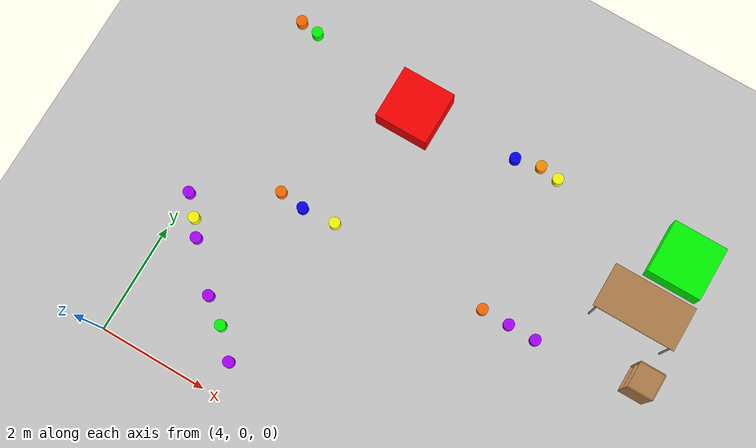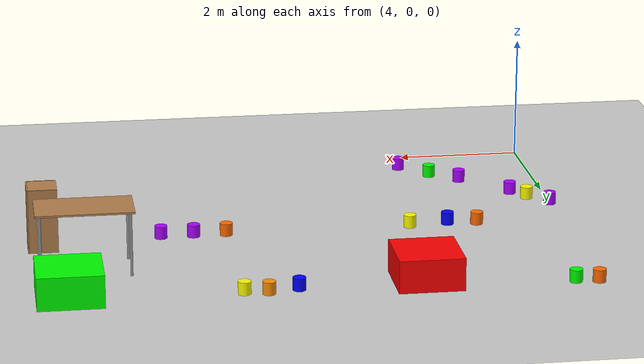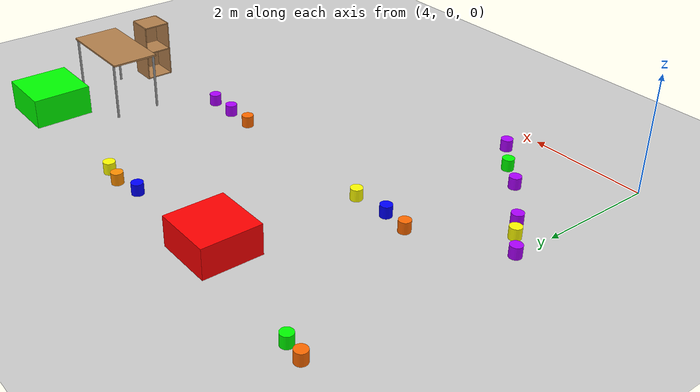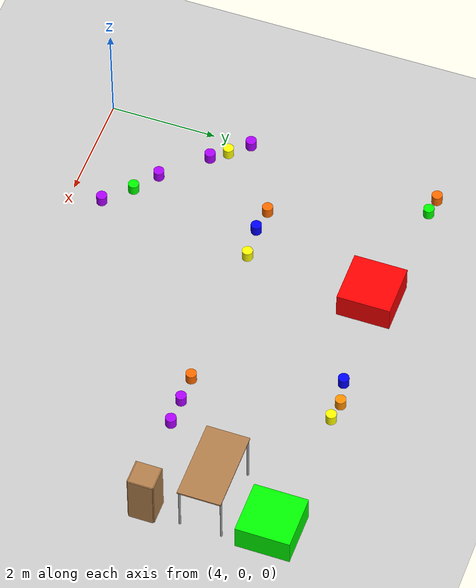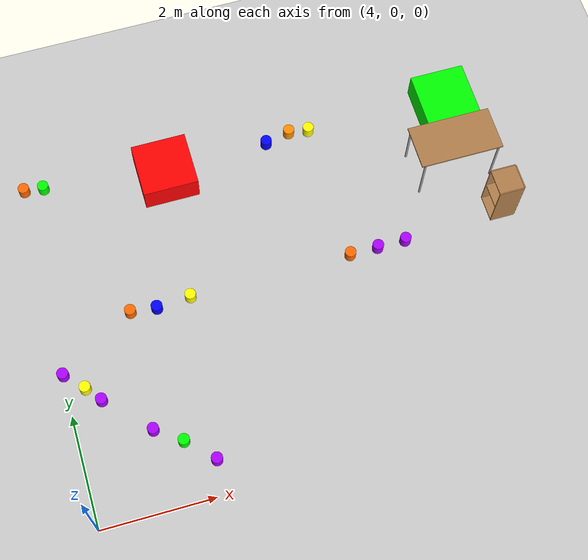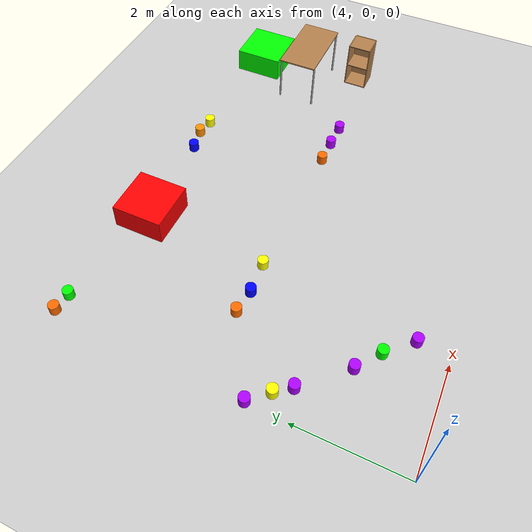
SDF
<sdf version="1.6">
 <world name="default">
  <model name="ground_plane">
   <static>1</static>
   <link name="link">
    <collision name="collision">
     <geometry><plane><normal>0 0 1</normal><size>100 100</size></plane></geometry>
     <surface>
      <contact><collide_bitmask>65535</collide_bitmask></contact>
      <friction><ode><mu>100</mu><mu2>50</mu2></ode></friction>
     </surface>
    </collision>
    <visual name="visual">
     <cast_shadows>0</cast_shadows>
     <geometry><plane><normal>0 0 1</normal><size>100 100</size></plane></geometry>
     <material>
      <script><uri>file://media/materials/scripts/gazebo.material</uri><name>Gazebo/Grey</name></script>
     </material>
    </visual>
   </link>
  </model>
  <model name="green_box_0">
   <link name="link_0">
    <inertial>
     <mass>1</mass>
     <inertia>
      <ixx>0.166667</ixx>
      <ixy>0</ixy>
      <ixz>0</ixz>
      <iyy>0.166667</iyy>
      <iyz>0</iyz>
      <izz>0.166667</izz>
     </inertia>
    </inertial>
    <visual name="visual">
     <geometry><box><size>1 0.999998 1</size></box></geometry>
     <material>
      <lighting>1</lighting>
      <script><uri>file://media/materials/scripts/gazebo.material</uri><name>Gazebo/Grey</name></script>
      <shader type="vertex"><normal_map>__default__</normal_map></shader>
      <ambient>0 1 0 1</ambient>
      <diffuse>0 1 0 1</diffuse>
      <specular>0 1 0 1</specular>
      <emissive>0 0 0 1</emissive>
     </material>
    </visual>
    <collision name="collision">
     <geometry><box><size>1 0.999998 1</size></box></geometry>
     <surface>
      <friction>
       <ode><mu>1</mu><mu2>1</mu2><fdir1>0 0 0</fdir1><slip1>0</slip1><slip2>0</slip2></ode>
       <torsional>
        <coefficient>1</coefficient>
        <patch_radius>0</patch_radius>
        <surface_radius>0</surface_radius>
        <use_patch_radius>1</use_patch_radius>
        <ode><slip>0</slip></ode>
       </torsional>
      </friction>
      <bounce><restitution_coefficient>0</restitution_coefficient><threshold>1e+06</threshold></bounce>
      <contact>
       <collide_without_contact>0</collide_without_contact>
       <collide_without_contact_bitmask>1</collide_without_contact_bitmask>
       <collide_bitmask>1</collide_bitmask>
       <ode>
        <soft_cfm>0</soft_cfm>
        <soft_erp>0.2</soft_erp>
        <kp>1e+13</kp>
        <kd>1</kd>
        <max_vel>0.01</max_vel>
        <min_depth>0</min_depth>
       </ode>
       <bullet>
        <split_impulse>1</split_impulse>
        <split_impulse_penetration_threshold>-0.01</split_impulse_penetration_threshold>
        <soft_cfm>0</soft_cfm>
        <soft_erp>0.2</soft_erp>
        <kp>1e+13</kp>
        <kd>1</kd>
       </bullet>
      </contact>
     </surface>
    </collision>
   </link>
   <static>1</static>
   <pose>11.9737 5.95039 0 0 -0 0</pose>
  </model>
  <model name="red_box_0">
   <link name="link_0">
    <inertial>
     <mass>1</mass>
     <inertia>
      <ixx>0.166667</ixx>
      <ixy>0</ixy>
      <ixz>0</ixz>
      <iyy>0.166667</iyy>
      <iyz>0</iyz>
      <izz>0.166667</izz>
     </inertia>
    </inertial>
    <visual name="visual">
     <geometry><box><size>1 1 1</size></box></geometry>
     <material>
      <lighting>1</lighting>
      <script><uri>file://media/materials/scripts/gazebo.material</uri><name>Gazebo/Grey</name></script>
      <shader type="vertex"><normal_map>__default__</normal_map></shader>
      <ambient>1 0 0 1</ambient>
      <diffuse>1 0 0 1</diffuse>
      <specular>1 0 0 1</specular>
      <emissive>0 0 0 1</emissive>
     </material>
    </visual>
    <collision name="collision">
     <geometry><box><size>1 1 1</size></box></geometry>
     <surface>
      <friction>
       <ode><mu>1</mu><mu2>1</mu2><fdir1>0 0 0</fdir1><slip1>0</slip1><slip2>0</slip2></ode>
       <torsional>
        <coefficient>1</coefficient>
        <patch_radius>0</patch_radius>
        <surface_radius>0</surface_radius>
        <use_patch_radius>1</use_patch_radius>
        <ode><slip>0</slip></ode>
       </torsional>
      </friction>
      <bounce><restitution_coefficient>0</restitution_coefficient><threshold>1e+06</threshold></bounce>
      <contact>
       <collide_without_contact>0</collide_without_contact>
       <collide_without_contact_bitmask>1</collide_without_contact_bitmask>
       <collide_bitmask>1</collide_bitmask>
       <ode>
        <soft_cfm>0</soft_cfm>
        <soft_erp>0.2</soft_erp>
        <kp>1e+13</kp>
        <kd>1</kd>
        <max_vel>0.01</max_vel>
        <min_depth>0</min_depth>
       </ode>
       <bullet>
        <split_impulse>1</split_impulse>
        <split_impulse_penetration_threshold>-0.01</split_impulse_penetration_threshold>
        <soft_cfm>0</soft_cfm>
        <soft_erp>0.2</soft_erp>
        <kp>1e+13</kp>
        <kd>1</kd>
       </bullet>
      </contact>
     </surface>
    </collision>
   </link>
   <static>1</static>
   <pose>6.64755 5.96572 0 0 -0 0</pose>
  </model>
  <model name="cabinet_0">
   <static>1</static>
   <link name="cabinet_bottom_plate">
    <inertial>
     <pose>0 0 -1 0 -0 0</pose>
     <inertia><ixx>2.05</ixx><ixy>0</ixy><ixz>0</ixz><iyy>2.05</iyy><iyz>0</iyz><izz>2.05</izz></inertia>
     <mass>25</mass>
    </inertial>
    <collision name="cabinet_bottom_plate_geom">
     <pose>0 0 0.01 0 -0 0</pose>
     <geometry><box><size>0.45 0.45 0.02</size></box></geometry>
    </collision>
    <visual name="cabinet_bottom_plate_geom_visual">
     <pose>0 0 0.01 0 -0 0</pose>
     <geometry><box><size>0.45 0.45 0.02</size></box></geometry>
     <material>
      <script><uri>file://media/materials/scripts/gazebo.material</uri><name>Gazebo/Wood</name></script>
     </material>
    </visual>
    <collision name="cabinet_bottom_plate_geom_cabinet_back_plate">
     <pose>0.235 0 0.51 0 -0 0</pose>
     <geometry><box><size>0.02 0.45 1.02</size></box></geometry>
    </collision>
    <visual name="cabinet_bottom_plate_geom_cabinet_back_plate_visual">
     <pose>0.235 0 0.51 0 -0 0</pose>
     <geometry><box><size>0.02 0.45 1.02</size></box></geometry>
     <material>
      <script><uri>file://media/materials/scripts/gazebo.material</uri><name>Gazebo/Wood</name></script>
     </material>
    </visual>
    <collision name="cabinet_bottom_plate_geom_cabinet_left_plate">
     <pose>0 0.235 0.51 0 -0 0</pose>
     <geometry><box><size>0.45 0.02 1.02</size></box></geometry>
    </collision>
    <visual name="cabinet_bottom_plate_geom_cabinet_left_plate_visual">
     <pose>0 0.235 0.51 0 -0 0</pose>
     <geometry><box><size>0.45 0.02 1.02</size></box></geometry>
     <material>
      <script><uri>file://media/materials/scripts/gazebo.material</uri><name>Gazebo/Wood</name></script>
     </material>
    </visual>
    <collision name="cabinet_bottom_plate_geom_cabinet_middle_plate">
     <pose>0 0 0.51 0 -0 0</pose>
     <geometry><box><size>0.45 0.45 0.02</size></box></geometry>
    </collision>
    <visual name="cabinet_bottom_plate_geom_cabinet_middle_plate_visual">
     <pose>0 0 0.51 0 -0 0</pose>
     <geometry><box><size>0.45 0.45 0.02</size></box></geometry>
     <material>
      <script><uri>file://media/materials/scripts/gazebo.material</uri><name>Gazebo/Wood</name></script>
     </material>
    </visual>
    <collision name="cabinet_bottom_plate_geom_cabinet_right_plate">
     <pose>0 -0.235 0.51 0 -0 0</pose>
     <geometry><box><size>0.45 0.02 1.02</size></box></geometry>
    </collision>
    <visual name="cabinet_bottom_plate_geom_cabinet_right_plate_visual">
     <pose>0 -0.235 0.51 0 -0 0</pose>
     <geometry><box><size>0.45 0.02 1.02</size></box></geometry>
     <material>
      <script><uri>file://media/materials/scripts/gazebo.material</uri><name>Gazebo/Wood</name></script>
     </material>
    </visual>
    <collision name="cabinet_bottom_plate_geom_cabinet_top_plate">
     <pose>0 0 1.01 0 -0 0</pose>
     <geometry><box><size>0.45 0.45 0.02</size></box></geometry>
    </collision>
    <visual name="cabinet_bottom_plate_geom_cabinet_top_plate_visual">
     <pose>0 0 1.01 0 -0 0</pose>
     <geometry><box><size>0.45 0.45 0.02</size></box></geometry>
     <material>
      <script><uri>file://media/materials/scripts/gazebo.material</uri><name>Gazebo/Wood</name></script>
     </material>
    </visual>
   </link>
   <pose>12.2698 3.74107 0 0 -0 0</pose>
  </model>
  <model name="cylinder_v_0">
   <link name="link_0">
    <pose>0 0 0.1 0 -0 0</pose>
    <inertial>
     <mass>1</mass>
     <inertia><ixx>0.145833</ixx><ixy>0</ixy><ixz>0</ixz><iyy>0.145833</iyy><iyz>0</iyz><izz>0.125</izz></inertia>
    </inertial>
    <visual name="visual">
     <geometry><cylinder><radius>0.1</radius><length>0.2</length></cylinder></geometry>
     <material>
      <lighting>1</lighting>
      <script><uri>file://media/materials/scripts/gazebo.material</uri><name>Gazebo/Grey</name></script>
      <ambient>0.682 0 1 1</ambient>
      <diffuse>0.682 0 1 1</diffuse>
      <specular>0 0 0 1</specular>
      <emissive>0 0 0 1</emissive>
      <shader type="vertex"><normal_map>__default__</normal_map></shader>
     </material>
    </visual>
    <collision name="collision">
     <geometry><cylinder><radius>0.1</radius><length>0.2</length></cylinder></geometry>
     <surface>
      <friction>
       <ode><mu>1</mu><mu2>1</mu2><fdir1>0 0 0</fdir1><slip1>0</slip1><slip2>0</slip2></ode>
       <torsional>
        <coefficient>1</coefficient>
        <patch_radius>0</patch_radius>
        <surface_radius>0</surface_radius>
        <use_patch_radius>1</use_patch_radius>
        <ode><slip>0</slip></ode>
       </torsional>
      </friction>
      <bounce><restitution_coefficient>0</restitution_coefficient><threshold>1e+06</threshold></bounce>
      <contact>
       <collide_without_contact>0</collide_without_contact>
       <collide_without_contact_bitmask>1</collide_without_contact_bitmask>
       <collide_bitmask>1</collide_bitmask>
       <ode>
        <soft_cfm>0</soft_cfm>
        <soft_erp>0.2</soft_erp>
        <kp>1e+13</kp>
        <kd>1</kd>
        <max_vel>0.01</max_vel>
        <min_depth>0</min_depth>
       </ode>
       <bullet>
        <split_impulse>1</split_impulse>
        <split_impulse_penetration_threshold>-0.01</split_impulse_penetration_threshold>
        <soft_cfm>0</soft_cfm>
        <soft_erp>0.2</soft_erp>
        <kp>1e+13</kp>
        <kd>1</kd>
       </bullet>
      </contact>
     </surface>
    </collision>
   </link>
   <static>1</static>
   <pose>6.15462 0.597596 0 0 -0 0</pose>
  </model>
  <model name="cylinder_v_1">
   <link name="link_0">
    <pose>0 0 0.1 0 -0 0</pose>
    <inertial>
     <mass>1</mass>
     <inertia><ixx>0.145833</ixx><ixy>0</ixy><ixz>0</ixz><iyy>0.145833</iyy><iyz>0</iyz><izz>0.125</izz></inertia>
    </inertial>
    <visual name="visual">
     <geometry><cylinder><radius>0.1</radius><length>0.2</length></cylinder></geometry>
     <material>
      <lighting>1</lighting>
      <script><uri>file://media/materials/scripts/gazebo.material</uri><name>Gazebo/Grey</name></script>
      <ambient>0.682 0 1 1</ambient>
      <diffuse>0.682 0 1 1</diffuse>
      <specular>0 0 0 1</specular>
      <emissive>0 0 0 1</emissive>
      <shader type="vertex"><normal_map>__default__</normal_map></shader>
     </material>
    </visual>
    <collision name="collision">
     <geometry><cylinder><radius>0.1</radius><length>0.2</length></cylinder></geometry>
     <surface>
      <friction>
       <ode><mu>1</mu><mu2>1</mu2><fdir1>0 0 0</fdir1><slip1>0</slip1><slip2>0</slip2></ode>
       <torsional>
        <coefficient>1</coefficient>
        <patch_radius>0</patch_radius>
        <surface_radius>0</surface_radius>
        <use_patch_radius>1</use_patch_radius>
        <ode><slip>0</slip></ode>
       </torsional>
      </friction>
      <bounce><restitution_coefficient>0</restitution_coefficient><threshold>1e+06</threshold></bounce>
      <contact>
       <collide_without_contact>0</collide_without_contact>
       <collide_without_contact_bitmask>1</collide_without_contact_bitmask>
       <collide_bitmask>1</collide_bitmask>
       <ode>
        <soft_cfm>0</soft_cfm>
        <soft_erp>0.2</soft_erp>
        <kp>1e+13</kp>
        <kd>1</kd>
        <max_vel>0.01</max_vel>
        <min_depth>0</min_depth>
       </ode>
       <bullet>
        <split_impulse>1</split_impulse>
        <split_impulse_penetration_threshold>-0.01</split_impulse_penetration_threshold>
        <soft_cfm>0</soft_cfm>
        <soft_erp>0.2</soft_erp>
        <kp>1e+13</kp>
        <kd>1</kd>
       </bullet>
      </contact>
     </surface>
    </collision>
   </link>
   <static>1</static>
   <pose>5.26215 1.3786 0 0 -0 0</pose>
  </model>
  <model name="cylinder_or">
   <link name="link_0">
    <pose>0 0 0.1 0 -0 0</pose>
    <inertial>
     <mass>1</mass>
     <inertia><ixx>0.145833</ixx><ixy>0</ixy><ixz>0</ixz><iyy>0.145833</iyy><iyz>0</iyz><izz>0.125</izz></inertia>
    </inertial>
    <visual name="visual">
     <geometry><cylinder><radius>0.1</radius><length>0.2</length></cylinder></geometry>
     <material>
      <lighting>1</lighting>
      <script><uri>file://media/materials/scripts/gazebo.material</uri><name>Gazebo/Grey</name></script>
      <ambient>1 0.416 0 1</ambient>
      <diffuse>1 0.416 0 1</diffuse>
      <specular>0 0 0 1</specular>
      <emissive>0 0 0 1</emissive>
      <shader type="vertex"><normal_map>__default__</normal_map></shader>
     </material>
    </visual>
    <collision name="collision">
     <geometry><cylinder><radius>0.1</radius><length>0.2</length></cylinder></geometry>
     <surface>
      <friction>
       <ode><mu>1</mu><mu2>1</mu2><fdir1>0 0 0</fdir1><slip1>0</slip1><slip2>0</slip2></ode>
       <torsional>
        <coefficient>1</coefficient>
        <patch_radius>0</patch_radius>
        <surface_radius>0</surface_radius>
        <use_patch_radius>1</use_patch_radius>
        <ode><slip>0</slip></ode>
       </torsional>
      </friction>
      <bounce><restitution_coefficient>0</restitution_coefficient><threshold>1e+06</threshold></bounce>
      <contact>
       <collide_without_contact>0</collide_without_contact>
       <collide_without_contact_bitmask>1</collide_without_contact_bitmask>
       <collide_bitmask>1</collide_bitmask>
       <ode>
        <soft_cfm>0</soft_cfm>
        <soft_erp>0.2</soft_erp>
        <kp>1e+13</kp>
        <kd>1</kd>
        <max_vel>0.01</max_vel>
        <min_depth>0</min_depth>
       </ode>
       <bullet>
        <split_impulse>1</split_impulse>
        <split_impulse_penetration_threshold>-0.01</split_impulse_penetration_threshold>
        <soft_cfm>0</soft_cfm>
        <soft_erp>0.2</soft_erp>
        <kp>1e+13</kp>
        <kd>1</kd>
       </bullet>
      </contact>
     </surface>
    </collision>
   </link>
   <static>1</static>
   <pose>4.09381 6.36238 0 0 -0 0</pose>
  </model>
  <model name="cylinder_g">
   <link name="link_0">
    <pose>0 0 0.1 0 -0 0</pose>
    <inertial>
     <mass>1</mass>
     <inertia><ixx>0.145833</ixx><ixy>0</ixy><ixz>0</ixz><iyy>0.145833</iyy><iyz>0</iyz><izz>0.125</izz></inertia>
    </inertial>
    <visual name="visual">
     <geometry><cylinder><radius>0.1</radius><length>0.2</length></cylinder></geometry>
     <material>
      <lighting>1</lighting>
      <script><uri>file://media/materials/scripts/gazebo.material</uri><name>Gazebo/Grey</name></script>
      <ambient>0 1 0 1</ambient>
      <diffuse>0 1 0 1</diffuse>
      <specular>0 0 0 1</specular>
      <emissive>0 0 0 1</emissive>
      <shader type="vertex"><normal_map>__default__</normal_map></shader>
     </material>
    </visual>
    <collision name="collision">
     <geometry><cylinder><radius>0.1</radius><length>0.2</length></cylinder></geometry>
     <surface>
      <friction>
       <ode><mu>1</mu><mu2>1</mu2><fdir1>0 0 0</fdir1><slip1>0</slip1><slip2>0</slip2></ode>
       <torsional>
        <coefficient>1</coefficient>
        <patch_radius>0</patch_radius>
        <surface_radius>0</surface_radius>
        <use_patch_radius>1</use_patch_radius>
        <ode><slip>0</slip></ode>
       </torsional>
      </friction>
      <bounce><restitution_coefficient>0</restitution_coefficient><threshold>1e+06</threshold></bounce>
      <contact>
       <collide_without_contact>0</collide_without_contact>
       <collide_without_contact_bitmask>1</collide_without_contact_bitmask>
       <collide_bitmask>1</collide_bitmask>
       <ode>
        <soft_cfm>0</soft_cfm>
        <soft_erp>0.2</soft_erp>
        <kp>1e+13</kp>
        <kd>1</kd>
        <max_vel>0.01</max_vel>
        <min_depth>0</min_depth>
       </ode>
       <bullet>
        <split_impulse>1</split_impulse>
        <split_impulse_penetration_threshold>-0.01</split_impulse_penetration_threshold>
        <soft_cfm>0</soft_cfm>
        <soft_erp>0.2</soft_erp>
        <kp>1e+13</kp>
        <kd>1</kd>
       </bullet>
      </contact>
     </surface>
    </collision>
   </link>
   <static>1</static>
   <pose>4.44017 6.31856 0 0 -0 0</pose>
  </model>
  <model name="cylinder_or_3">
   <link name="link_0">
    <pose>0 0 0.1 0 -0 0</pose>
    <inertial>
     <mass>1</mass>
     <inertia><ixx>0.145833</ixx><ixy>0</ixy><ixz>0</ixz><iyy>0.145833</iyy><iyz>0</iyz><izz>0.125</izz></inertia>
    </inertial>
    <visual name="visual">
     <geometry><cylinder><radius>0.1</radius><length>0.2</length></cylinder></geometry>
     <material>
      <lighting>1</lighting>
      <script><uri>file://media/materials/scripts/gazebo.material</uri><name>Gazebo/Grey</name></script>
      <ambient>1 0.416 0 1</ambient>
      <diffuse>1 0.416 0 1</diffuse>
      <specular>0 0 0 1</specular>
      <emissive>0 0 0 1</emissive>
      <shader type="vertex"><normal_map>__default__</normal_map></shader>
     </material>
    </visual>
    <collision name="collision">
     <geometry><cylinder><radius>0.1</radius><length>0.2</length></cylinder></geometry>
     <surface>
      <friction>
       <ode><mu>1</mu><mu2>1</mu2><fdir1>0 0 0</fdir1><slip1>0</slip1><slip2>0</slip2></ode>
       <torsional>
        <coefficient>1</coefficient>
        <patch_radius>0</patch_radius>
        <surface_radius>0</surface_radius>
        <use_patch_radius>1</use_patch_radius>
        <ode><slip>0</slip></ode>
       </torsional>
      </friction>
      <bounce><restitution_coefficient>0</restitution_coefficient><threshold>1e+06</threshold></bounce>
      <contact>
       <collide_without_contact>0</collide_without_contact>
       <collide_without_contact_bitmask>1</collide_without_contact_bitmask>
       <collide_bitmask>1</collide_bitmask>
       <ode>
        <soft_cfm>0</soft_cfm>
        <soft_erp>0.2</soft_erp>
        <kp>1e+13</kp>
        <kd>1</kd>
        <max_vel>0.01</max_vel>
        <min_depth>0</min_depth>
       </ode>
       <bullet>
        <split_impulse>1</split_impulse>
        <split_impulse_penetration_threshold>-0.01</split_impulse_penetration_threshold>
        <soft_cfm>0</soft_cfm>
        <soft_erp>0.2</soft_erp>
        <kp>1e+13</kp>
        <kd>1</kd>
       </bullet>
      </contact>
     </surface>
    </collision>
   </link>
   <static>1</static>
   <pose>5.39139 3.53983 0 0 -0 0</pose>
  </model>
  <model name="cylinder_b_5">
   <link name="link_0">
    <pose>0 0 0.1 0 -0 0</pose>
    <inertial>
     <mass>1</mass>
     <inertia><ixx>0.145833</ixx><ixy>0</ixy><ixz>0</ixz><iyy>0.145833</iyy><iyz>0</iyz><izz>0.125</izz></inertia>
    </inertial>
    <visual name="visual">
     <geometry><cylinder><radius>0.1</radius><length>0.2</length></cylinder></geometry>
     <material>
      <lighting>1</lighting>
      <script><uri>file://media/materials/scripts/gazebo.material</uri><name>Gazebo/Grey</name></script>
      <ambient>0 0 1 1</ambient>
      <diffuse>0 0 1 1</diffuse>
      <specular>0 0 0 1</specular>
      <emissive>0 0 0 1</emissive>
      <shader type="vertex"><normal_map>__default__</normal_map></shader>
     </material>
    </visual>
    <collision name="collision">
     <geometry><cylinder><radius>0.1</radius><length>0.2</length></cylinder></geometry>
     <surface>
      <friction>
       <ode><mu>1</mu><mu2>1</mu2><fdir1>0 0 0</fdir1><slip1>0</slip1><slip2>0</slip2></ode>
       <torsional>
        <coefficient>1</coefficient>
        <patch_radius>0</patch_radius>
        <surface_radius>0</surface_radius>
        <use_patch_radius>1</use_patch_radius>
        <ode><slip>0</slip></ode>
       </torsional>
      </friction>
      <bounce><restitution_coefficient>0</restitution_coefficient><threshold>1e+06</threshold></bounce>
      <contact>
       <collide_without_contact>0</collide_without_contact>
       <collide_without_contact_bitmask>1</collide_without_contact_bitmask>
       <collide_bitmask>1</collide_bitmask>
       <ode>
        <soft_cfm>0</soft_cfm>
        <soft_erp>0.2</soft_erp>
        <kp>1e+13</kp>
        <kd>1</kd>
        <max_vel>0.01</max_vel>
        <min_depth>0</min_depth>
       </ode>
       <bullet>
        <split_impulse>1</split_impulse>
        <split_impulse_penetration_threshold>-0.01</split_impulse_penetration_threshold>
        <soft_cfm>0</soft_cfm>
        <soft_erp>0.2</soft_erp>
        <kp>1e+13</kp>
        <kd>1</kd>
       </bullet>
      </contact>
     </surface>
    </collision>
   </link>
   <static>1</static>
   <pose>5.85386 3.48701 0 0 -0 0</pose>
  </model>
  <model name="cylinder_y_4">
   <link name="link_0">
    <pose>0 0 0.1 0 -0 0</pose>
    <inertial>
     <mass>1</mass>
     <inertia><ixx>0.145833</ixx><ixy>0</ixy><ixz>0</ixz><iyy>0.145833</iyy><iyz>0</iyz><izz>0.125</izz></inertia>
    </inertial>
    <visual name="visual">
     <geometry><cylinder><radius>0.1</radius><length>0.2</length></cylinder></geometry>
     <material>
      <lighting>1</lighting>
      <script><uri>file://media/materials/scripts/gazebo.material</uri><name>Gazebo/Grey</name></script>
      <ambient>1 1 0 1</ambient>
      <diffuse>1 1 0 1</diffuse>
      <specular>0 0 0 1</specular>
      <emissive>0 0 0 1</emissive>
      <shader type="vertex"><normal_map>__default__</normal_map></shader>
     </material>
    </visual>
    <collision name="collision">
     <geometry><cylinder><radius>0.1</radius><length>0.2</length></cylinder></geometry>
     <surface>
      <friction>
       <ode><mu>1</mu><mu2>1</mu2><fdir1>0 0 0</fdir1><slip1>0</slip1><slip2>0</slip2></ode>
       <torsional>
        <coefficient>1</coefficient>
        <patch_radius>0</patch_radius>
        <surface_radius>0</surface_radius>
        <use_patch_radius>1</use_patch_radius>
        <ode><slip>0</slip></ode>
       </torsional>
      </friction>
      <bounce><restitution_coefficient>0</restitution_coefficient><threshold>1e+06</threshold></bounce>
      <contact>
       <collide_without_contact>0</collide_without_contact>
       <collide_without_contact_bitmask>1</collide_without_contact_bitmask>
       <collide_bitmask>1</collide_bitmask>
       <ode>
        <soft_cfm>0</soft_cfm>
        <soft_erp>0.2</soft_erp>
        <kp>1e+13</kp>
        <kd>1</kd>
        <max_vel>0.01</max_vel>
        <min_depth>0</min_depth>
       </ode>
       <bullet>
        <split_impulse>1</split_impulse>
        <split_impulse_penetration_threshold>-0.01</split_impulse_penetration_threshold>
        <soft_cfm>0</soft_cfm>
        <soft_erp>0.2</soft_erp>
        <kp>1e+13</kp>
        <kd>1</kd>
       </bullet>
      </contact>
     </surface>
    </collision>
   </link>
   <static>1</static>
   <pose>6.47081 3.53639 0 0 -0 0</pose>
  </model>
  <model name="cylinder_or_4">
   <link name="link_0">
    <pose>0 0 0.1 0 -0 0</pose>
    <inertial>
     <mass>1</mass>
     <inertia><ixx>0.145833</ixx><ixy>0</ixy><ixz>0</ixz><iyy>0.145833</iyy><iyz>0</iyz><izz>0.125</izz></inertia>
    </inertial>
    <visual name="visual">
     <geometry><cylinder><radius>0.1</radius><length>0.2</length></cylinder></geometry>
     <material>
      <lighting>1</lighting>
      <script><uri>file://media/materials/scripts/gazebo.material</uri><name>Gazebo/Grey</name></script>
      <ambient>1 0.416 0 1</ambient>
      <diffuse>1 0.416 0 1</diffuse>
      <specular>0 0 0 1</specular>
      <emissive>0 0 0 1</emissive>
      <shader type="vertex"><normal_map>__default__</normal_map></shader>
     </material>
    </visual>
    <collision name="collision">
     <geometry><cylinder><radius>0.1</radius><length>0.2</length></cylinder></geometry>
     <surface>
      <friction>
       <ode><mu>1</mu><mu2>1</mu2><fdir1>0 0 0</fdir1><slip1>0</slip1><slip2>0</slip2></ode>
       <torsional>
        <coefficient>1</coefficient>
        <patch_radius>0</patch_radius>
        <surface_radius>0</surface_radius>
        <use_patch_radius>1</use_patch_radius>
        <ode><slip>0</slip></ode>
       </torsional>
      </friction>
      <bounce><restitution_coefficient>0</restitution_coefficient><threshold>1e+06</threshold></bounce>
      <contact>
       <collide_without_contact>0</collide_without_contact>
       <collide_without_contact_bitmask>1</collide_without_contact_bitmask>
       <collide_bitmask>1</collide_bitmask>
       <ode>
        <soft_cfm>0</soft_cfm>
        <soft_erp>0.2</soft_erp>
        <kp>1e+13</kp>
        <kd>1</kd>
        <max_vel>0.01</max_vel>
        <min_depth>0</min_depth>
       </ode>
       <bullet>
        <split_impulse>1</split_impulse>
        <split_impulse_penetration_threshold>-0.01</split_impulse_penetration_threshold>
        <soft_cfm>0</soft_cfm>
        <soft_erp>0.2</soft_erp>
        <kp>1e+13</kp>
        <kd>1</kd>
       </bullet>
      </contact>
     </surface>
    </collision>
   </link>
   <static>1</static>
   <pose>9.40055 3.52802 0 0 -0 0</pose>
  </model>
  <model name="cylinder_v_2">
   <link name="link_0">
    <pose>0 0 0.1 0 -0 0</pose>
    <inertial>
     <mass>1</mass>
     <inertia><ixx>0.145833</ixx><ixy>0</ixy><ixz>0</ixz><iyy>0.145833</iyy><iyz>0</iyz><izz>0.125</izz></inertia>
    </inertial>
    <visual name="visual">
     <geometry><cylinder><radius>0.1</radius><length>0.2</length></cylinder></geometry>
     <material>
      <lighting>1</lighting>
      <script><uri>file://media/materials/scripts/gazebo.material</uri><name>Gazebo/Grey</name></script>
      <ambient>0.682 0 1 1</ambient>
      <diffuse>0.682 0 1 1</diffuse>
      <specular>0 0 0 1</specular>
      <emissive>0 0 0 1</emissive>
      <shader type="vertex"><normal_map>__default__</normal_map></shader>
     </material>
    </visual>
    <collision name="collision">
     <geometry><cylinder><radius>0.1</radius><length>0.2</length></cylinder></geometry>
     <surface>
      <friction>
       <ode><mu>1</mu><mu2>1</mu2><fdir1>0 0 0</fdir1><slip1>0</slip1><slip2>0</slip2></ode>
       <torsional>
        <coefficient>1</coefficient>
        <patch_radius>0</patch_radius>
        <surface_radius>0</surface_radius>
        <use_patch_radius>1</use_patch_radius>
        <ode><slip>0</slip></ode>
       </torsional>
      </friction>
      <bounce><restitution_coefficient>0</restitution_coefficient><threshold>1e+06</threshold></bounce>
      <contact>
       <collide_without_contact>0</collide_without_contact>
       <collide_without_contact_bitmask>1</collide_without_contact_bitmask>
       <collide_bitmask>1</collide_bitmask>
       <ode>
        <soft_cfm>0</soft_cfm>
        <soft_erp>0.2</soft_erp>
        <kp>1e+13</kp>
        <kd>1</kd>
        <max_vel>0.01</max_vel>
        <min_depth>0</min_depth>
       </ode>
       <bullet>
        <split_impulse>1</split_impulse>
        <split_impulse_penetration_threshold>-0.01</split_impulse_penetration_threshold>
        <soft_cfm>0</soft_cfm>
        <soft_erp>0.2</soft_erp>
        <kp>1e+13</kp>
        <kd>1</kd>
       </bullet>
      </contact>
     </surface>
    </collision>
   </link>
   <static>1</static>
   <pose>9.91458 3.52647 0 0 -0 0</pose>
  </model>
  <model name="cylinder_v_3">
   <link name="link_0">
    <pose>0 0 0.1 0 -0 0</pose>
    <inertial>
     <mass>1</mass>
     <inertia><ixx>0.145833</ixx><ixy>0</ixy><ixz>0</ixz><iyy>0.145833</iyy><iyz>0</iyz><izz>0.125</izz></inertia>
    </inertial>
    <visual name="visual">
     <geometry><cylinder><radius>0.1</radius><length>0.2</length></cylinder></geometry>
     <material>
      <lighting>1</lighting>
      <script><uri>file://media/materials/scripts/gazebo.material</uri><name>Gazebo/Grey</name></script>
      <ambient>0.682 0 1 1</ambient>
      <diffuse>0.682 0 1 1</diffuse>
      <specular>0 0 0 1</specular>
      <emissive>0 0 0 1</emissive>
      <shader type="vertex"><normal_map>__default__</normal_map></shader>
     </material>
    </visual>
    <collision name="collision">
     <geometry><cylinder><radius>0.1</radius><length>0.2</length></cylinder></geometry>
     <surface>
      <friction>
       <ode><mu>1</mu><mu2>1</mu2><fdir1>0 0 0</fdir1><slip1>0</slip1><slip2>0</slip2></ode>
       <torsional>
        <coefficient>1</coefficient>
        <patch_radius>0</patch_radius>
        <surface_radius>0</surface_radius>
        <use_patch_radius>1</use_patch_radius>
        <ode><slip>0</slip></ode>
       </torsional>
      </friction>
      <bounce><restitution_coefficient>0</restitution_coefficient><threshold>1e+06</threshold></bounce>
      <contact>
       <collide_without_contact>0</collide_without_contact>
       <collide_without_contact_bitmask>1</collide_without_contact_bitmask>
       <collide_bitmask>1</collide_bitmask>
       <ode>
        <soft_cfm>0</soft_cfm>
        <soft_erp>0.2</soft_erp>
        <kp>1e+13</kp>
        <kd>1</kd>
        <max_vel>0.01</max_vel>
        <min_depth>0</min_depth>
       </ode>
       <bullet>
        <split_impulse>1</split_impulse>
        <split_impulse_penetration_threshold>-0.01</split_impulse_penetration_threshold>
        <soft_cfm>0</soft_cfm>
        <soft_erp>0.2</soft_erp>
        <kp>1e+13</kp>
        <kd>1</kd>
       </bullet>
      </contact>
     </surface>
    </collision>
   </link>
   <static>1</static>
   <pose>10.4285 3.52508 0 0 -0 0</pose>
  </model>
  <model name="cylinder_o">
   <link name="link_0">
    <pose>0 0 0.1 0 -0 0</pose>
    <inertial>
     <mass>1</mass>
     <inertia><ixx>0.145833</ixx><ixy>0</ixy><ixz>0</ixz><iyy>0.145833</iyy><iyz>0</iyz><izz>0.125</izz></inertia>
    </inertial>
    <visual name="visual">
     <geometry><cylinder><radius>0.1</radius><length>0.2</length></cylinder></geometry>
     <material>
      <lighting>1</lighting>
      <script><uri>file://media/materials/scripts/gazebo.material</uri><name>Gazebo/Grey</name></script>
      <ambient>1 0.561 0 1</ambient>
      <diffuse>1 0.561 0 1</diffuse>
      <specular>0 0 0 1</specular>
      <emissive>0 0 0 1</emissive>
      <shader type="vertex"><normal_map>__default__</normal_map></shader>
     </material>
    </visual>
    <collision name="collision">
     <geometry><cylinder><radius>0.1</radius><length>0.2</length></cylinder></geometry>
     <surface>
      <friction>
       <ode><mu>1</mu><mu2>1</mu2><fdir1>0 0 0</fdir1><slip1>0</slip1><slip2>0</slip2></ode>
       <torsional>
        <coefficient>1</coefficient>
        <patch_radius>0</patch_radius>
        <surface_radius>0</surface_radius>
        <use_patch_radius>1</use_patch_radius>
        <ode><slip>0</slip></ode>
       </torsional>
      </friction>
      <bounce><restitution_coefficient>0</restitution_coefficient><threshold>1e+06</threshold></bounce>
      <contact>
       <collide_without_contact>0</collide_without_contact>
       <collide_without_contact_bitmask>1</collide_without_contact_bitmask>
       <collide_bitmask>1</collide_bitmask>
       <ode>
        <soft_cfm>0</soft_cfm>
        <soft_erp>0.2</soft_erp>
        <kp>1e+13</kp>
        <kd>1</kd>
        <max_vel>0.01</max_vel>
        <min_depth>0</min_depth>
       </ode>
       <bullet>
        <split_impulse>1</split_impulse>
        <split_impulse_penetration_threshold>-0.01</split_impulse_penetration_threshold>
        <soft_cfm>0</soft_cfm>
        <soft_erp>0.2</soft_erp>
        <kp>1e+13</kp>
        <kd>1</kd>
       </bullet>
      </contact>
     </surface>
    </collision>
   </link>
   <static>1</static>
   <pose>9.04897 6.20191 0 0 -0 0</pose>
  </model>
  <model name="cylinder_y_5">
   <link name="link_0">
    <pose>0 0 0.1 0 -0 0</pose>
    <inertial>
     <mass>1</mass>
     <inertia><ixx>0.145833</ixx><ixy>0</ixy><ixz>0</ixz><iyy>0.145833</iyy><iyz>0</iyz><izz>0.125</izz></inertia>
    </inertial>
    <visual name="visual">
     <geometry><cylinder><radius>0.1</radius><length>0.2</length></cylinder></geometry>
     <material>
      <lighting>1</lighting>
      <script><uri>file://media/materials/scripts/gazebo.material</uri><name>Gazebo/Grey</name></script>
      <ambient>1 1 0 1</ambient>
      <diffuse>1 1 0 1</diffuse>
      <specular>0 0 0 1</specular>
      <emissive>0 0 0 1</emissive>
      <shader type="vertex"><normal_map>__default__</normal_map></shader>
     </material>
    </visual>
    <collision name="collision">
     <geometry><cylinder><radius>0.1</radius><length>0.2</length></cylinder></geometry>
     <surface>
      <friction>
       <ode><mu>1</mu><mu2>1</mu2><fdir1>0 0 0</fdir1><slip1>0</slip1><slip2>0</slip2></ode>
       <torsional>
        <coefficient>1</coefficient>
        <patch_radius>0</patch_radius>
        <surface_radius>0</surface_radius>
        <use_patch_radius>1</use_patch_radius>
        <ode><slip>0</slip></ode>
       </torsional>
      </friction>
      <bounce><restitution_coefficient>0</restitution_coefficient><threshold>1e+06</threshold></bounce>
      <contact>
       <collide_without_contact>0</collide_without_contact>
       <collide_without_contact_bitmask>1</collide_without_contact_bitmask>
       <collide_bitmask>1</collide_bitmask>
       <ode>
        <soft_cfm>0</soft_cfm>
        <soft_erp>0.2</soft_erp>
        <kp>1e+13</kp>
        <kd>1</kd>
        <max_vel>0.01</max_vel>
        <min_depth>0</min_depth>
       </ode>
       <bullet>
        <split_impulse>1</split_impulse>
        <split_impulse_penetration_threshold>-0.01</split_impulse_penetration_threshold>
        <soft_cfm>0</soft_cfm>
        <soft_erp>0.2</soft_erp>
        <kp>1e+13</kp>
        <kd>1</kd>
       </bullet>
      </contact>
     </surface>
    </collision>
   </link>
   <static>1</static>
   <pose>9.40863 6.14955 0 0 -0 0</pose>
  </model>
  <model name="cylinder_b_6">
   <link name="link_0">
    <pose>0 0 0.1 0 -0 0</pose>
    <inertial>
     <mass>1</mass>
     <inertia><ixx>0.145833</ixx><ixy>0</ixy><ixz>0</ixz><iyy>0.145833</iyy><iyz>0</iyz><izz>0.125</izz></inertia>
    </inertial>
    <visual name="visual">
     <geometry><cylinder><radius>0.1</radius><length>0.2</length></cylinder></geometry>
     <material>
      <lighting>1</lighting>
      <script><uri>file://media/materials/scripts/gazebo.material</uri><name>Gazebo/Grey</name></script>
      <ambient>0 0 1 1</ambient>
      <diffuse>0 0 1 1</diffuse>
      <specular>0 0 0 1</specular>
      <emissive>0 0 0 1</emissive>
      <shader type="vertex"><normal_map>__default__</normal_map></shader>
     </material>
    </visual>
    <collision name="collision">
     <geometry><cylinder><radius>0.1</radius><length>0.2</length></cylinder></geometry>
     <surface>
      <friction>
       <ode><mu>1</mu><mu2>1</mu2><fdir1>0 0 0</fdir1><slip1>0</slip1><slip2>0</slip2></ode>
       <torsional>
        <coefficient>1</coefficient>
        <patch_radius>0</patch_radius>
        <surface_radius>0</surface_radius>
        <use_patch_radius>1</use_patch_radius>
        <ode><slip>0</slip></ode>
       </torsional>
      </friction>
      <bounce><restitution_coefficient>0</restitution_coefficient><threshold>1e+06</threshold></bounce>
      <contact>
       <collide_without_contact>0</collide_without_contact>
       <collide_without_contact_bitmask>1</collide_without_contact_bitmask>
       <collide_bitmask>1</collide_bitmask>
       <ode>
        <soft_cfm>0</soft_cfm>
        <soft_erp>0.2</soft_erp>
        <kp>1e+13</kp>
        <kd>1</kd>
        <max_vel>0.01</max_vel>
        <min_depth>0</min_depth>
       </ode>
       <bullet>
        <split_impulse>1</split_impulse>
        <split_impulse_penetration_threshold>-0.01</split_impulse_penetration_threshold>
        <soft_cfm>0</soft_cfm>
        <soft_erp>0.2</soft_erp>
        <kp>1e+13</kp>
        <kd>1</kd>
       </bullet>
      </contact>
     </surface>
    </collision>
   </link>
   <static>1</static>
   <pose>8.58602 6.1005 0 0 -0 0</pose>
  </model>
  <model name="cylinder_v_5">
   <link name="link_0">
    <pose>0 0 0.1 0 -0 0</pose>
    <inertial>
     <mass>1</mass>
     <inertia><ixx>0.145833</ixx><ixy>0</ixy><ixz>0</ixz><iyy>0.145833</iyy><iyz>0</iyz><izz>0.125</izz></inertia>
    </inertial>
    <visual name="visual">
     <geometry><cylinder><radius>0.1</radius><length>0.2</length></cylinder></geometry>
     <material>
      <lighting>1</lighting>
      <script><uri>file://media/materials/scripts/gazebo.material</uri><name>Gazebo/Grey</name></script>
      <ambient>0.682 0 1 1</ambient>
      <diffuse>0.682 0 1 1</diffuse>
      <specular>0 0 0 1</specular>
      <emissive>0 0 0 1</emissive>
      <shader type="vertex"><normal_map>__default__</normal_map></shader>
     </material>
    </visual>
    <collision name="collision">
     <geometry><cylinder><radius>0.1</radius><length>0.2</length></cylinder></geometry>
     <surface>
      <friction>
       <ode><mu>1</mu><mu2>1</mu2><fdir1>0 0 0</fdir1><slip1>0</slip1><slip2>0</slip2></ode>
       <torsional>
        <coefficient>1</coefficient>
        <patch_radius>0</patch_radius>
        <surface_radius>0</surface_radius>
        <use_patch_radius>1</use_patch_radius>
        <ode><slip>0</slip></ode>
       </torsional>
      </friction>
      <bounce><restitution_coefficient>0</restitution_coefficient><threshold>1e+06</threshold></bounce>
      <contact>
       <collide_without_contact>0</collide_without_contact>
       <collide_without_contact_bitmask>1</collide_without_contact_bitmask>
       <collide_bitmask>1</collide_bitmask>
       <ode>
        <soft_cfm>0</soft_cfm>
        <soft_erp>0.2</soft_erp>
        <kp>1e+13</kp>
        <kd>1</kd>
        <max_vel>0.01</max_vel>
        <min_depth>0</min_depth>
       </ode>
       <bullet>
        <split_impulse>1</split_impulse>
        <split_impulse_penetration_threshold>-0.01</split_impulse_penetration_threshold>
        <soft_cfm>0</soft_cfm>
        <soft_erp>0.2</soft_erp>
        <kp>1e+13</kp>
        <kd>1</kd>
       </bullet>
      </contact>
     </surface>
    </collision>
   </link>
   <static>1</static>
   <pose>4.01777 2.73096 0 0 -0 0</pose>
  </model>
  <model name="cylinder_y_7">
   <link name="link_0">
    <pose>0 0 0.1 0 -0 0</pose>
    <inertial>
     <mass>1</mass>
     <inertia><ixx>0.145833</ixx><ixy>0</ixy><ixz>0</ixz><iyy>0.145833</iyy><iyz>0</iyz><izz>0.125</izz></inertia>
    </inertial>
    <visual name="visual">
     <geometry><cylinder><radius>0.1</radius><length>0.2</length></cylinder></geometry>
     <material>
      <lighting>1</lighting>
      <script><uri>file://media/materials/scripts/gazebo.material</uri><name>Gazebo/Grey</name></script>
      <ambient>1 1 0 1</ambient>
      <diffuse>1 1 0 1</diffuse>
      <specular>0 0 0 1</specular>
      <emissive>0 0 0 1</emissive>
      <shader type="vertex"><normal_map>__default__</normal_map></shader>
     </material>
    </visual>
    <collision name="collision">
     <geometry><cylinder><radius>0.1</radius><length>0.2</length></cylinder></geometry>
     <surface>
      <friction>
       <ode><mu>1</mu><mu2>1</mu2><fdir1>0 0 0</fdir1><slip1>0</slip1><slip2>0</slip2></ode>
       <torsional>
        <coefficient>1</coefficient>
        <patch_radius>0</patch_radius>
        <surface_radius>0</surface_radius>
        <use_patch_radius>1</use_patch_radius>
        <ode><slip>0</slip></ode>
       </torsional>
      </friction>
      <bounce><restitution_coefficient>0</restitution_coefficient><threshold>1e+06</threshold></bounce>
      <contact>
       <collide_without_contact>0</collide_without_contact>
       <collide_without_contact_bitmask>1</collide_without_contact_bitmask>
       <collide_bitmask>1</collide_bitmask>
       <ode>
        <soft_cfm>0</soft_cfm>
        <soft_erp>0.2</soft_erp>
        <kp>1e+13</kp>
        <kd>1</kd>
        <max_vel>0.01</max_vel>
        <min_depth>0</min_depth>
       </ode>
       <bullet>
        <split_impulse>1</split_impulse>
        <split_impulse_penetration_threshold>-0.01</split_impulse_penetration_threshold>
        <soft_cfm>0</soft_cfm>
        <soft_erp>0.2</soft_erp>
        <kp>1e+13</kp>
        <kd>1</kd>
       </bullet>
      </contact>
     </surface>
    </collision>
   </link>
   <static>1</static>
   <pose>4.32908 2.39784 0 0 -0 0</pose>
  </model>
  <model name="cylinder_v_6">
   <link name="link_0">
    <pose>0 0 0.1 0 -0 0</pose>
    <inertial>
     <mass>1</mass>
     <inertia><ixx>0.145833</ixx><ixy>0</ixy><ixz>0</ixz><iyy>0.145833</iyy><iyz>0</iyz><izz>0.125</izz></inertia>
    </inertial>
    <visual name="visual">
     <geometry><cylinder><radius>0.1</radius><length>0.2</length></cylinder></geometry>
     <material>
      <lighting>1</lighting>
      <script><uri>file://media/materials/scripts/gazebo.material</uri><name>Gazebo/Grey</name></script>
      <ambient>0.682 0 1 1</ambient>
      <diffuse>0.682 0 1 1</diffuse>
      <specular>0 0 0 1</specular>
      <emissive>0 0 0 1</emissive>
      <shader type="vertex"><normal_map>__default__</normal_map></shader>
     </material>
    </visual>
    <collision name="collision">
     <geometry><cylinder><radius>0.1</radius><length>0.2</length></cylinder></geometry>
     <surface>
      <friction>
       <ode><mu>1</mu><mu2>1</mu2><fdir1>0 0 0</fdir1><slip1>0</slip1><slip2>0</slip2></ode>
       <torsional>
        <coefficient>1</coefficient>
        <patch_radius>0</patch_radius>
        <surface_radius>0</surface_radius>
        <use_patch_radius>1</use_patch_radius>
        <ode><slip>0</slip></ode>
       </torsional>
      </friction>
      <bounce><restitution_coefficient>0</restitution_coefficient><threshold>1e+06</threshold></bounce>
      <contact>
       <collide_without_contact>0</collide_without_contact>
       <collide_without_contact_bitmask>1</collide_without_contact_bitmask>
       <collide_bitmask>1</collide_bitmask>
       <ode>
        <soft_cfm>0</soft_cfm>
        <soft_erp>0.2</soft_erp>
        <kp>1e+13</kp>
        <kd>1</kd>
        <max_vel>0.01</max_vel>
        <min_depth>0</min_depth>
       </ode>
       <bullet>
        <split_impulse>1</split_impulse>
        <split_impulse_penetration_threshold>-0.01</split_impulse_penetration_threshold>
        <soft_cfm>0</soft_cfm>
        <soft_erp>0.2</soft_erp>
        <kp>1e+13</kp>
        <kd>1</kd>
       </bullet>
      </contact>
     </surface>
    </collision>
   </link>
   <static>1</static>
   <pose>4.54827 2.11783 0 0 -0 0</pose>
  </model>
  <model name="cylinder_g_3">
   <link name="link_0">
    <pose>0 0 0.1 0 -0 0</pose>
    <inertial>
     <mass>1</mass>
     <inertia><ixx>0.145833</ixx><ixy>0</ixy><ixz>0</ixz><iyy>0.145833</iyy><iyz>0</iyz><izz>0.125</izz></inertia>
    </inertial>
    <visual name="visual">
     <geometry><cylinder><radius>0.1</radius><length>0.2</length></cylinder></geometry>
     <material>
      <lighting>1</lighting>
      <script><uri>file://media/materials/scripts/gazebo.material</uri><name>Gazebo/Grey</name></script>
      <ambient>0 1 0 1</ambient>
      <diffuse>0 1 0 1</diffuse>
      <specular>0 0 0 1</specular>
      <emissive>0 0 0 1</emissive>
      <shader type="vertex"><normal_map>__default__</normal_map></shader>
     </material>
    </visual>
    <collision name="collision">
     <geometry><cylinder><radius>0.1</radius><length>0.2</length></cylinder></geometry>
     <surface>
      <friction>
       <ode><mu>1</mu><mu2>1</mu2><fdir1>0 0 0</fdir1><slip1>0</slip1><slip2>0</slip2></ode>
       <torsional>
        <coefficient>1</coefficient>
        <patch_radius>0</patch_radius>
        <surface_radius>0</surface_radius>
        <use_patch_radius>1</use_patch_radius>
        <ode><slip>0</slip></ode>
       </torsional>
      </friction>
      <bounce><restitution_coefficient>0</restitution_coefficient><threshold>1e+06</threshold></bounce>
      <contact>
       <collide_without_contact>0</collide_without_contact>
       <collide_without_contact_bitmask>1</collide_without_contact_bitmask>
       <collide_bitmask>1</collide_bitmask>
       <ode>
        <soft_cfm>0</soft_cfm>
        <soft_erp>0.2</soft_erp>
        <kp>1e+13</kp>
        <kd>1</kd>
        <max_vel>0.01</max_vel>
        <min_depth>0</min_depth>
       </ode>
       <bullet>
        <split_impulse>1</split_impulse>
        <split_impulse_penetration_threshold>-0.01</split_impulse_penetration_threshold>
        <soft_cfm>0</soft_cfm>
        <soft_erp>0.2</soft_erp>
        <kp>1e+13</kp>
        <kd>1</kd>
       </bullet>
      </contact>
     </surface>
    </collision>
   </link>
   <static>1</static>
   <pose>5.70774 1.05106 0 0 -0 0</pose>
  </model>
  <model name="table_1">
   <static>1</static>
   <link name="link">
    <collision name="surface">
     <pose>0 0 1 0 -0 0</pose>
     <geometry><box><size>1.5 0.8 0.03</size></box></geometry>
     <surface><friction><ode><mu>0.6</mu><mu2>0.6</mu2></ode></friction></surface>
    </collision>
    <visual name="visual1">
     <pose>0 0 1 0 -0 0</pose>
     <geometry><box><size>1.5 0.8 0.03</size></box></geometry>
     <material>
      <script><uri>file://media/materials/scripts/gazebo.material</uri><name>Gazebo/Wood</name></script>
     </material>
    </visual>
    <collision name="front_left_leg">
     <pose>0.68 0.38 0.5 0 -0 0</pose>
     <geometry><cylinder><radius>0.02</radius><length>1</length></cylinder></geometry>
    </collision>
    <visual name="front_left_leg">
     <pose>0.68 0.38 0.5 0 -0 0</pose>
     <geometry><cylinder><radius>0.02</radius><length>1</length></cylinder></geometry>
     <material>
      <script><uri>file://media/materials/scripts/gazebo.material</uri><name>Gazebo/Grey</name></script>
     </material>
    </visual>
    <collision name="front_right_leg">
     <pose>0.68 -0.38 0.5 0 -0 0</pose>
     <geometry><cylinder><radius>0.02</radius><length>1</length></cylinder></geometry>
    </collision>
    <visual name="front_right_leg">
     <pose>0.68 -0.38 0.5 0 -0 0</pose>
     <geometry><cylinder><radius>0.02</radius><length>1</length></cylinder></geometry>
     <material>
      <script><uri>file://media/materials/scripts/gazebo.material</uri><name>Gazebo/Grey</name></script>
     </material>
    </visual>
    <collision name="back_right_leg">
     <pose>-0.68 -0.38 0.5 0 -0 0</pose>
     <geometry><cylinder><radius>0.02</radius><length>1</length></cylinder></geometry>
    </collision>
    <visual name="back_right_leg">
     <pose>-0.68 -0.38 0.5 0 -0 0</pose>
     <geometry><cylinder><radius>0.02</radius><length>1</length></cylinder></geometry>
     <material>
      <script><uri>file://media/materials/scripts/gazebo.material</uri><name>Gazebo/Grey</name></script>
     </material>
    </visual>
    <collision name="back_left_leg">
     <pose>-0.68 0.38 0.5 0 -0 0</pose>
     <geometry><cylinder><radius>0.02</radius><length>1</length></cylinder></geometry>
    </collision>
    <visual name="back_left_leg">
     <pose>-0.68 0.38 0.5 0 -0 0</pose>
     <geometry><cylinder><radius>0.02</radius><length>1</length></cylinder></geometry>
     <material>
      <script><uri>file://media/materials/scripts/gazebo.material</uri><name>Gazebo/Grey</name></script>
     </material>
    </visual>
   </link>
   <pose>11.6801 4.78444 0 0 -0 0</pose>
  </model>
 </world>
</sdf>
